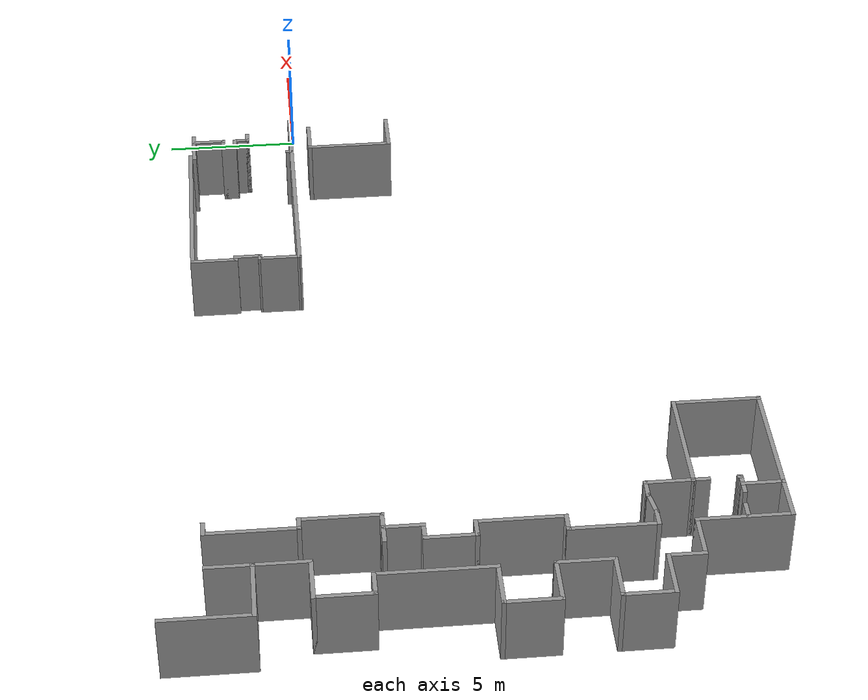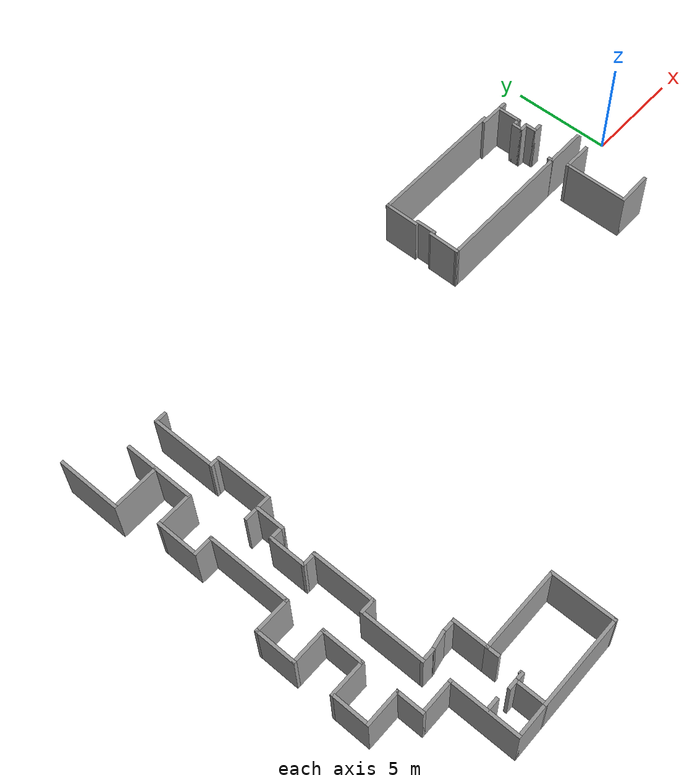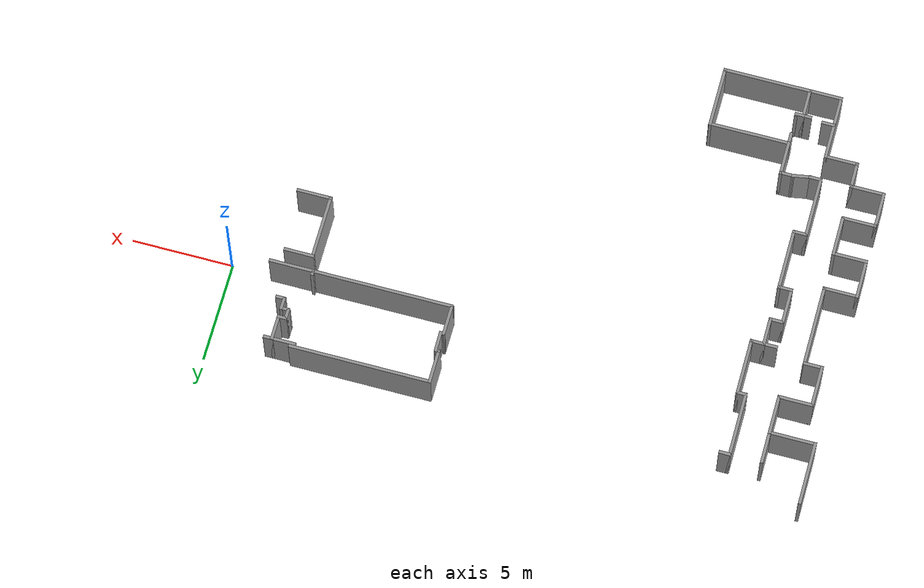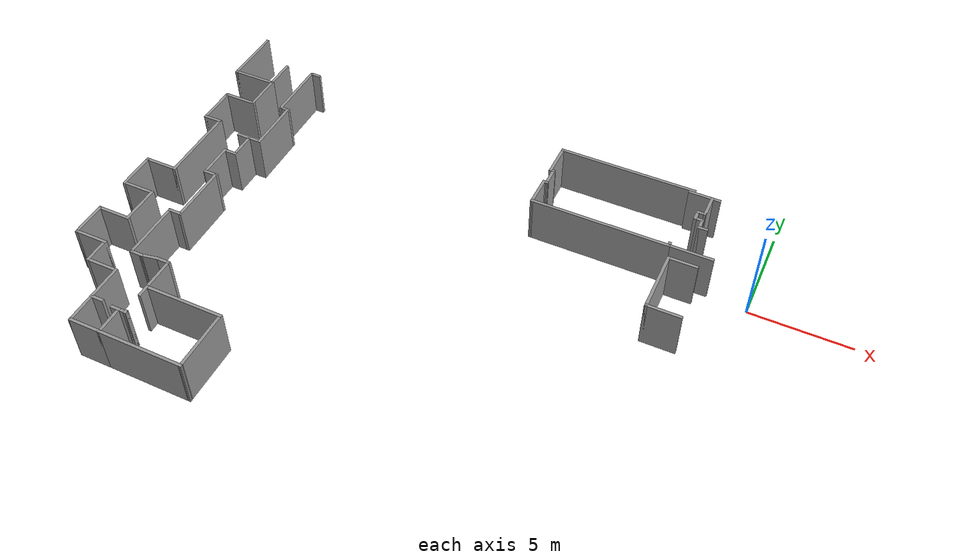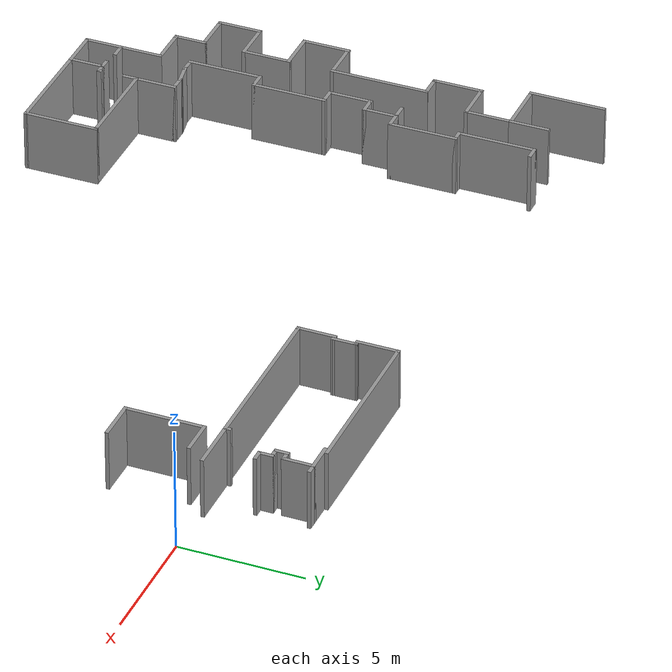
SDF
<sdf version="1.7">
 <model name="NursingHome">
  <pose>-0.88842 0.073115 0 0 -0 0</pose>
  <link name="Wall_156">
   <collision name="Wall_156_Collision">
    <geometry><box><size>3.15 0.15 2.5</size></box></geometry>
    <pose>0 0 1.25 0 -0 0</pose>
   </collision>
   <visual name="Wall_156_Visual">
    <pose>0 0 1.25 0 -0 0</pose>
    <geometry><box><size>3.15 0.15 2.5</size></box></geometry>
    <material>
     <script><uri>file://media/materials/scripts/gazebo.material</uri><name>Gazebo/Grey</name></script>
     <ambient>1 1 1 1</ambient>
    </material>
    <meta><layer>0</layer></meta>
   </visual>
   <pose>-28.3947 3.82 0 0 -0 -1.5708</pose>
  </link>
  <link name="Wall_158">
   <collision name="Wall_158_Collision">
    <geometry><box><size>2.35 0.15 2.5</size></box></geometry>
    <pose>0 0 1.25 0 -0 0</pose>
   </collision>
   <visual name="Wall_158_Visual">
    <pose>0 0 1.25 0 -0 0</pose>
    <geometry><box><size>2.35 0.15 2.5</size></box></geometry>
    <material>
     <script><uri>file://media/materials/scripts/gazebo.material</uri><name>Gazebo/Grey</name></script>
     <ambient>1 1 1 1</ambient>
    </material>
    <meta><layer>0</layer></meta>
   </visual>
   <pose>-27.2947 2.32 0 0 -0 0</pose>
  </link>
  <link name="Wall_163">
   <collision name="Wall_163_Collision">
    <geometry><box><size>1.65 0.15 2.5</size></box></geometry>
    <pose>0 0 1.25 0 -0 0</pose>
   </collision>
   <visual name="Wall_163_Visual">
    <pose>0 0 1.25 0 -0 0</pose>
    <geometry><box><size>1.65 0.15 2.5</size></box></geometry>
    <material>
     <script><uri>file://media/materials/scripts/gazebo.material</uri><name>Gazebo/Grey</name></script>
     <ambient>1 1 1 1</ambient>
    </material>
    <meta><layer>0</layer></meta>
   </visual>
   <pose>-26.1947 3.07 0 0 -0 1.5708</pose>
  </link>
  <link name="Wall_169">
   <collision name="Wall_169_Collision">
    <geometry><box><size>2 0.15 2.5</size></box></geometry>
    <pose>0 0 1.25 0 -0 0</pose>
   </collision>
   <visual name="Wall_169_Visual">
    <pose>0 0 1.25 0 -0 0</pose>
    <geometry><box><size>2 0.15 2.5</size></box></geometry>
    <material>
     <script><uri>file://media/materials/scripts/gazebo.material</uri><name>Gazebo/Grey</name></script>
     <ambient>1 1 1 1</ambient>
    </material>
    <meta><layer>0</layer></meta>
   </visual>
   <pose>-26.1947 1.395 0 0 -0 -1.5708</pose>
  </link>
  <link name="Wall_170">
   <collision name="Wall_170_Collision">
    <geometry><box><size>1.75 0.15 2.5</size></box></geometry>
    <pose>0 0 1.25 0 -0 0</pose>
   </collision>
   <visual name="Wall_170_Visual">
    <pose>0 0 1.25 0 -0 0</pose>
    <geometry><box><size>1.75 0.15 2.5</size></box></geometry>
    <material>
     <script><uri>file://media/materials/scripts/gazebo.material</uri><name>Gazebo/Grey</name></script>
     <ambient>1 1 1 1</ambient>
    </material>
    <meta><layer>0</layer></meta>
   </visual>
   <pose>-26.9947 0.47 0 0 -0 3.14159</pose>
  </link>
  <link name="Wall_171">
   <collision name="Wall_171_Collision">
    <geometry><box><size>2.1 0.15 2.5</size></box></geometry>
    <pose>0 0 1.25 0 -0 0</pose>
   </collision>
   <visual name="Wall_171_Visual">
    <pose>0 0 1.25 0 -0 0</pose>
    <geometry><box><size>2.1 0.15 2.5</size></box></geometry>
    <material>
     <script><uri>file://media/materials/scripts/gazebo.material</uri><name>Gazebo/Grey</name></script>
     <ambient>1 1 1 1</ambient>
    </material>
    <meta><layer>0</layer></meta>
   </visual>
   <pose>-27.7947 -0.505 0 0 -0 -1.5708</pose>
  </link>
  <link name="Wall_173">
   <collision name="Wall_173_Collision">
    <geometry><box><size>1 0.15 2.5</size></box></geometry>
    <pose>0 0 1.25 0 -0 0</pose>
   </collision>
   <visual name="Wall_173_Visual">
    <pose>0 0 1.25 0 -0 0</pose>
    <geometry><box><size>1 0.15 2.5</size></box></geometry>
    <material>
     <script><uri>file://media/materials/scripts/gazebo.material</uri><name>Gazebo/Grey</name></script>
     <ambient>1 1 1 1</ambient>
    </material>
    <meta><layer>0</layer></meta>
   </visual>
   <pose>-27.3697 -1.48 0 0 -0 0</pose>
  </link>
  <link name="Wall_175">
   <collision name="Wall_175_Collision">
    <geometry><box><size>4.1 0.15 2.5</size></box></geometry>
    <pose>0 0 1.25 0 -0 0</pose>
   </collision>
   <visual name="Wall_175_Visual">
    <pose>0 0 1.25 0 -0 0</pose>
    <geometry><box><size>4.1 0.15 2.5</size></box></geometry>
    <material>
     <script><uri>file://media/materials/scripts/gazebo.material</uri><name>Gazebo/Grey</name></script>
     <ambient>1 1 1 1</ambient>
    </material>
    <meta><layer>0</layer></meta>
   </visual>
   <pose>-26.9447 -3.455 0 0 -0 -1.5708</pose>
  </link>
  <link name="Wall_177">
   <collision name="Wall_177_Collision">
    <geometry><box><size>1.75 0.15 2.5</size></box></geometry>
    <pose>0 0 1.25 0 -0 0</pose>
   </collision>
   <visual name="Wall_177_Visual">
    <pose>0 0 1.25 0 -0 0</pose>
    <geometry><box><size>1.75 0.15 2.5</size></box></geometry>
    <material>
     <script><uri>file://media/materials/scripts/gazebo.material</uri><name>Gazebo/Grey</name></script>
     <ambient>1 1 1 1</ambient>
    </material>
    <meta><layer>0</layer></meta>
   </visual>
   <pose>-27.7447 -5.43 0 0 -0 3.14159</pose>
  </link>
  <link name="Wall_179">
   <collision name="Wall_179_Collision">
    <geometry><box><size>2 0.15 2.5</size></box></geometry>
    <pose>0 0 1.25 0 -0 0</pose>
   </collision>
   <visual name="Wall_179_Visual">
    <pose>0 0 1.25 0 -0 0</pose>
    <geometry><box><size>2 0.15 2.5</size></box></geometry>
    <material>
     <script><uri>file://media/materials/scripts/gazebo.material</uri><name>Gazebo/Grey</name></script>
     <ambient>1 1 1 1</ambient>
    </material>
    <meta><layer>0</layer></meta>
   </visual>
   <pose>-28.5447 -6.355 0 0 -0 -1.5708</pose>
  </link>
  <link name="Wall_180">
   <collision name="Wall_180_Collision">
    <geometry><box><size>1.75 0.15 2.5</size></box></geometry>
    <pose>0 0 1.25 0 -0 0</pose>
   </collision>
   <visual name="Wall_180_Visual">
    <pose>0 0 1.25 0 -0 0</pose>
    <geometry><box><size>1.75 0.15 2.5</size></box></geometry>
    <material>
     <script><uri>file://media/materials/scripts/gazebo.material</uri><name>Gazebo/Grey</name></script>
     <ambient>1 1 1 1</ambient>
    </material>
    <meta><layer>0</layer></meta>
   </visual>
   <pose>-27.7447 -7.28 0 0 -0 0</pose>
  </link>
  <link name="Wall_183">
   <collision name="Wall_183_Collision">
    <geometry><box><size>2.05 0.15 2.5</size></box></geometry>
    <pose>0 0 1.25 0 -0 0</pose>
   </collision>
   <visual name="Wall_183_Visual">
    <pose>0 0 1.25 0 -0 0</pose>
    <geometry><box><size>2.05 0.15 2.5</size></box></geometry>
    <material>
     <script><uri>file://media/materials/scripts/gazebo.material</uri><name>Gazebo/Grey</name></script>
     <ambient>1 1 1 1</ambient>
    </material>
    <meta><layer>0</layer></meta>
   </visual>
   <pose>-26.9447 -8.23 0 0 -0 -1.5708</pose>
  </link>
  <link name="Wall_185">
   <collision name="Wall_185_Collision">
    <geometry><box><size>1.75 0.15 2.5</size></box></geometry>
    <pose>0 0 1.25 0 -0 0</pose>
   </collision>
   <visual name="Wall_185_Visual">
    <pose>0 0 1.25 0 -0 0</pose>
    <geometry><box><size>1.75 0.15 2.5</size></box></geometry>
    <material>
     <script><uri>file://media/materials/scripts/gazebo.material</uri><name>Gazebo/Grey</name></script>
     <ambient>1 1 1 1</ambient>
    </material>
    <meta><layer>0</layer></meta>
   </visual>
   <pose>-27.7447 -9.18 0 0 -0 3.14159</pose>
  </link>
  <link name="Wall_186">
   <collision name="Wall_186_Collision">
    <geometry><box><size>1.85 0.15 2.5</size></box></geometry>
    <pose>0 0 1.25 0 -0 0</pose>
   </collision>
   <visual name="Wall_186_Visual">
    <pose>0 0 1.25 0 -0 0</pose>
    <geometry><box><size>1.85 0.15 2.5</size></box></geometry>
    <material>
     <script><uri>file://media/materials/scripts/gazebo.material</uri><name>Gazebo/Grey</name></script>
     <ambient>1 1 1 1</ambient>
    </material>
    <meta><layer>0</layer></meta>
   </visual>
   <pose>-28.5447 -10.03 0 0 -0 -1.5708</pose>
  </link>
  <link name="Wall_188">
   <collision name="Wall_188_Collision">
    <geometry><box><size>1.75 0.15 2.5</size></box></geometry>
    <pose>0 0 1.25 0 -0 0</pose>
   </collision>
   <visual name="Wall_188_Visual">
    <pose>0 0 1.25 0 -0 0</pose>
    <geometry><box><size>1.75 0.15 2.5</size></box></geometry>
    <material>
     <script><uri>file://media/materials/scripts/gazebo.material</uri><name>Gazebo/Grey</name></script>
     <ambient>1 1 1 1</ambient>
    </material>
    <meta><layer>0</layer></meta>
   </visual>
   <pose>-27.7447 -10.88 0 0 -0 0</pose>
  </link>
  <link name="Wall_190">
   <collision name="Wall_190_Collision">
    <geometry><box><size>1.35 0.15 2.5</size></box></geometry>
    <pose>0 0 1.25 0 -0 0</pose>
   </collision>
   <visual name="Wall_190_Visual">
    <pose>0 0 1.25 0 -0 0</pose>
    <geometry><box><size>1.35 0.15 2.5</size></box></geometry>
    <material>
     <script><uri>file://media/materials/scripts/gazebo.material</uri><name>Gazebo/Grey</name></script>
     <ambient>1 1 1 1</ambient>
    </material>
    <meta><layer>0</layer></meta>
   </visual>
   <pose>-26.9447 -11.48 0 0 -0 -1.5708</pose>
  </link>
  <link name="Wall_192">
   <collision name="Wall_192_Collision">
    <geometry><box><size>1.7 0.15 2.5</size></box></geometry>
    <pose>0 0 1.25 0 -0 0</pose>
   </collision>
   <visual name="Wall_192_Visual">
    <pose>0 0 1.25 0 -0 0</pose>
    <geometry><box><size>1.7 0.15 2.5</size></box></geometry>
    <material>
     <script><uri>file://media/materials/scripts/gazebo.material</uri><name>Gazebo/Grey</name></script>
     <ambient>1 1 1 1</ambient>
    </material>
    <meta><layer>0</layer></meta>
   </visual>
   <pose>-26.1697 -12.08 0 0 -0 0</pose>
  </link>
  <link name="Wall_195">
   <collision name="Wall_195_Collision">
    <geometry><box><size>3.3 0.15 2.5</size></box></geometry>
    <pose>0 0 1.25 0 -0 0</pose>
   </collision>
   <visual name="Wall_195_Visual">
    <pose>0 0 1.25 0 -0 0</pose>
    <geometry><box><size>3.3 0.15 2.5</size></box></geometry>
    <material>
     <script><uri>file://media/materials/scripts/gazebo.material</uri><name>Gazebo/Grey</name></script>
     <ambient>1 1 1 1</ambient>
    </material>
    <meta><layer>0</layer></meta>
   </visual>
   <pose>-25.3947 -13.655 0 0 -0 -1.5708</pose>
  </link>
  <link name="Wall_197">
   <collision name="Wall_197_Collision">
    <geometry><box><size>0.65 0.15 2.5</size></box></geometry>
    <pose>0 0 1.25 0 -0 0</pose>
   </collision>
   <visual name="Wall_197_Visual">
    <pose>0 0 1.25 0 -0 0</pose>
    <geometry><box><size>0.65 0.15 2.5</size></box></geometry>
    <material>
     <script><uri>file://media/materials/scripts/gazebo.material</uri><name>Gazebo/Grey</name></script>
     <ambient>1 1 1 1</ambient>
    </material>
    <meta><layer>0</layer></meta>
   </visual>
   <pose>-25.1037 -13.7746 0 0 -0 0</pose>
  </link>
  <link name="Wall_199">
   <collision name="Wall_199_Collision">
    <geometry><box><size>1.7 0.15 2.5</size></box></geometry>
    <pose>0 0 1.25 0 -0 0</pose>
   </collision>
   <visual name="Wall_199_Visual">
    <pose>0 0 1.25 0 -0 0</pose>
    <geometry><box><size>1.7 0.15 2.5</size></box></geometry>
    <material>
     <script><uri>file://media/materials/scripts/gazebo.material</uri><name>Gazebo/Grey</name></script>
     <ambient>1 1 1 1</ambient>
    </material>
    <meta><layer>0</layer></meta>
   </visual>
   <pose>-24.6197 -15.23 0 0 -0 0</pose>
  </link>
  <link name="Wall_201">
   <collision name="Wall_201_Collision">
    <geometry><box><size>1.5 0.15 2.5</size></box></geometry>
    <pose>0 0 1.25 0 -0 0</pose>
   </collision>
   <visual name="Wall_201_Visual">
    <pose>0 0 1.25 0 -0 0</pose>
    <geometry><box><size>1.5 0.15 2.5</size></box></geometry>
    <material>
     <script><uri>file://media/materials/scripts/gazebo.material</uri><name>Gazebo/Grey</name></script>
     <ambient>1 1 1 1</ambient>
    </material>
    <meta><layer>0</layer></meta>
   </visual>
   <pose>-23.8447 -14.555 0 0 -0 1.5708</pose>
  </link>
  <link name="Wall_202">
   <collision name="Wall_202_Collision">
    <geometry><box><size>0.5 0.15 2.5</size></box></geometry>
    <pose>0 0 1.25 0 -0 0</pose>
   </collision>
   <visual name="Wall_202_Visual">
    <pose>0 0 1.25 0 -0 0</pose>
    <geometry><box><size>0.5 0.15 2.5</size></box></geometry>
    <material>
     <script><uri>file://media/materials/scripts/gazebo.material</uri><name>Gazebo/Grey</name></script>
     <ambient>1 1 1 1</ambient>
    </material>
    <meta><layer>0</layer></meta>
   </visual>
   <pose>-24.0197 -13.88 0 0 -0 3.14159</pose>
  </link>
  <link name="Wall_204">
   <collision name="Wall_204_Collision">
    <geometry><box><size>0.5 0.15 2.5</size></box></geometry>
    <pose>0 0 1.25 0 -0 0</pose>
   </collision>
   <visual name="Wall_204_Visual">
    <pose>0 0 1.25 0 -0 0</pose>
    <geometry><box><size>0.5 0.15 2.5</size></box></geometry>
    <material>
     <script><uri>file://media/materials/scripts/gazebo.material</uri><name>Gazebo/Grey</name></script>
     <ambient>1 1 1 1</ambient>
    </material>
    <meta><layer>0</layer></meta>
   </visual>
   <pose>-23.6697 -13.88 0 0 -0 0</pose>
  </link>
  <link name="Wall_205">
   <collision name="Wall_205_Collision">
    <geometry><box><size>0.2 0.15 2.5</size></box></geometry>
    <pose>0 0 1.25 0 -0 0</pose>
   </collision>
   <visual name="Wall_205_Visual">
    <pose>0 0 1.25 0 -0 0</pose>
    <geometry><box><size>0.2 0.15 2.5</size></box></geometry>
    <material>
     <script><uri>file://media/materials/scripts/gazebo.material</uri><name>Gazebo/Grey</name></script>
     <ambient>1 1 1 1</ambient>
    </material>
    <meta><layer>0</layer></meta>
   </visual>
   <pose>-23.4947 -13.855 0 0 -0 1.5708</pose>
  </link>
  <link name="Wall_208">
   <collision name="Wall_208_Collision">
    <geometry><box><size>0.65 0.15 2.5</size></box></geometry>
    <pose>0 0 1.25 0 -0 0</pose>
   </collision>
   <visual name="Wall_208_Visual">
    <pose>0 0 1.25 0 -0 0</pose>
    <geometry><box><size>0.65 0.15 2.5</size></box></geometry>
    <material>
     <script><uri>file://media/materials/scripts/gazebo.material</uri><name>Gazebo/Grey</name></script>
     <ambient>1 1 1 1</ambient>
    </material>
    <meta><layer>0</layer></meta>
   </visual>
   <pose>-23.5128 -12.5376 0 0 -0 1.5708</pose>
  </link>
  <link name="Wall_210">
   <collision name="Wall_210_Collision">
    <geometry><box><size>4.05 0.15 2.5</size></box></geometry>
    <pose>0 0 1.25 0 -0 0</pose>
   </collision>
   <visual name="Wall_210_Visual">
    <pose>0 0 1.25 0 -0 0</pose>
    <geometry><box><size>4.05 0.15 2.5</size></box></geometry>
    <material>
     <script><uri>file://media/materials/scripts/gazebo.material</uri><name>Gazebo/Grey</name></script>
     <ambient>1 1 1 1</ambient>
    </material>
    <meta><layer>0</layer></meta>
   </visual>
   <pose>-21.5628 -12.2876 0 0 -0 0</pose>
  </link>
  <link name="Wall_213">
   <collision name="Wall_213_Collision">
    <geometry><box><size>3.1 0.15 2.5</size></box></geometry>
    <pose>0 0 1.25 0 -0 0</pose>
   </collision>
   <visual name="Wall_213_Visual">
    <pose>0 0 1.25 0 -0 0</pose>
    <geometry><box><size>3.1 0.15 2.5</size></box></geometry>
    <material>
     <script><uri>file://media/materials/scripts/gazebo.material</uri><name>Gazebo/Grey</name></script>
     <ambient>1 1 1 1</ambient>
    </material>
    <meta><layer>0</layer></meta>
   </visual>
   <pose>-19.6128 -13.7626 0 0 -0 -1.5708</pose>
  </link>
  <link name="Wall_215">
   <collision name="Wall_215_Collision">
    <geometry><box><size>4.38192 0.15 2.5</size></box></geometry>
    <pose>0 0 1.25 0 -0 0</pose>
   </collision>
   <visual name="Wall_215_Visual">
    <pose>0 0 1.25 0 -0 0</pose>
    <geometry><box><size>4.38192 0.15 2.5</size></box></geometry>
    <material>
     <script><uri>file://media/materials/scripts/gazebo.material</uri><name>Gazebo/Grey</name></script>
     <ambient>1 1 1 1</ambient>
    </material>
    <meta><layer>0</layer></meta>
   </visual>
   <pose>-21.7288 -15.2338 0 0 -0 3.13979</pose>
  </link>
  <link name="Wall_218">
   <collision name="Wall_218_Collision">
    <geometry><box><size>1.75 0.15 2.5</size></box></geometry>
    <pose>0 0 1.25 0 -0 0</pose>
   </collision>
   <visual name="Wall_218_Visual">
    <pose>0 0 1.25 0 -0 0</pose>
    <geometry><box><size>1.75 0.15 2.5</size></box></geometry>
    <material>
     <script><uri>file://media/materials/scripts/gazebo.material</uri><name>Gazebo/Grey</name></script>
     <ambient>1 1 1 1</ambient>
    </material>
    <meta><layer>0</layer></meta>
   </visual>
   <pose>-23.5128 -11.4876 0 0 -0 1.5708</pose>
  </link>
  <link name="Wall_220">
   <collision name="Wall_220_Collision">
    <geometry><box><size>0.75 0.15 2.5</size></box></geometry>
    <pose>0 0 1.25 0 -0 0</pose>
   </collision>
   <visual name="Wall_220_Visual">
    <pose>0 0 1.25 0 -0 0</pose>
    <geometry><box><size>0.75 0.15 2.5</size></box></geometry>
    <material>
     <script><uri>file://media/materials/scripts/gazebo.material</uri><name>Gazebo/Grey</name></script>
     <ambient>1 1 1 1</ambient>
    </material>
    <meta><layer>0</layer></meta>
   </visual>
   <pose>-23.8128 -10.6876 0 0 -0 3.14159</pose>
  </link>
  <link name="Wall_222">
   <collision name="Wall_222_Collision">
    <geometry><box><size>0.7 0.15 2.5</size></box></geometry>
    <pose>0 0 1.25 0 -0 0</pose>
   </collision>
   <visual name="Wall_222_Visual">
    <pose>0 0 1.25 0 -0 0</pose>
    <geometry><box><size>0.7 0.15 2.5</size></box></geometry>
    <material>
     <script><uri>file://media/materials/scripts/gazebo.material</uri><name>Gazebo/Grey</name></script>
     <ambient>1 1 1 1</ambient>
    </material>
    <meta><layer>0</layer></meta>
   </visual>
   <pose>-25.1789 -10.8318 0 0 -0 3.14159</pose>
  </link>
  <link name="Wall_224">
   <collision name="Wall_224_Collision">
    <geometry><box><size>0.954078 0.15 2.5</size></box></geometry>
    <pose>0 0 1.25 0 -0 0</pose>
   </collision>
   <visual name="Wall_224_Visual">
    <pose>0 0 1.25 0 -0 0</pose>
    <geometry><box><size>0.954078 0.15 2.5</size></box></geometry>
    <material>
     <script><uri>file://media/materials/scripts/gazebo.material</uri><name>Gazebo/Grey</name></script>
     <ambient>1 1 1 1</ambient>
    </material>
    <meta><layer>0</layer></meta>
   </visual>
   <pose>-24.5084 -10.7597 0 0 -0 0.180228</pose>
  </link>
  <link name="Wall_226">
   <collision name="Wall_226_Collision">
    <geometry><box><size>3.1 0.15 2.5</size></box></geometry>
    <pose>0 0 1.25 0 -0 0</pose>
   </collision>
   <visual name="Wall_226_Visual">
    <pose>0 0 1.25 0 -0 0</pose>
    <geometry><box><size>3.1 0.15 2.5</size></box></geometry>
    <material>
     <script><uri>file://media/materials/scripts/gazebo.material</uri><name>Gazebo/Grey</name></script>
     <ambient>1 1 1 1</ambient>
    </material>
    <meta><layer>0</layer></meta>
   </visual>
   <pose>-25.4539 -9.35676 0 0 -0 1.5708</pose>
  </link>
  <link name="Wall_228">
   <collision name="Wall_228_Collision">
    <geometry><box><size>0.75 0.15 2.5</size></box></geometry>
    <pose>0 0 1.25 0 -0 0</pose>
   </collision>
   <visual name="Wall_228_Visual">
    <pose>0 0 1.25 0 -0 0</pose>
    <geometry><box><size>0.75 0.15 2.5</size></box></geometry>
    <material>
     <script><uri>file://media/materials/scripts/gazebo.material</uri><name>Gazebo/Grey</name></script>
     <ambient>1 1 1 1</ambient>
    </material>
    <meta><layer>0</layer></meta>
   </visual>
   <pose>-25.1539 -7.88176 0 0 -0 0</pose>
  </link>
  <link name="Wall_229">
   <collision name="Wall_229_Collision">
    <geometry><box><size>3.1 0.15 2.5</size></box></geometry>
    <pose>0 0 1.25 0 -0 0</pose>
   </collision>
   <visual name="Wall_229_Visual">
    <pose>0 0 1.25 0 -0 0</pose>
    <geometry><box><size>3.1 0.15 2.5</size></box></geometry>
    <material>
     <script><uri>file://media/materials/scripts/gazebo.material</uri><name>Gazebo/Grey</name></script>
     <ambient>1 1 1 1</ambient>
    </material>
    <meta><layer>0</layer></meta>
   </visual>
   <pose>-24.8539 -6.40676 0 0 -0 1.5708</pose>
  </link>
  <link name="Wall_231">
   <collision name="Wall_231_Collision">
    <geometry><box><size>0.75 0.15 2.5</size></box></geometry>
    <pose>0 0 1.25 0 -0 0</pose>
   </collision>
   <visual name="Wall_231_Visual">
    <pose>0 0 1.25 0 -0 0</pose>
    <geometry><box><size>0.75 0.15 2.5</size></box></geometry>
    <material>
     <script><uri>file://media/materials/scripts/gazebo.material</uri><name>Gazebo/Grey</name></script>
     <ambient>1 1 1 1</ambient>
    </material>
    <meta><layer>0</layer></meta>
   </visual>
   <pose>-25.1539 -4.93176 0 0 -0 3.14159</pose>
  </link>
  <link name="Wall_233">
   <collision name="Wall_233_Collision">
    <geometry><box><size>1.85 0.15 2.5</size></box></geometry>
    <pose>0 0 1.25 0 -0 0</pose>
   </collision>
   <visual name="Wall_233_Visual">
    <pose>0 0 1.25 0 -0 0</pose>
    <geometry><box><size>1.85 0.15 2.5</size></box></geometry>
    <material>
     <script><uri>file://media/materials/scripts/gazebo.material</uri><name>Gazebo/Grey</name></script>
     <ambient>1 1 1 1</ambient>
    </material>
    <meta><layer>0</layer></meta>
   </visual>
   <pose>-25.4539 -4.08176 0 0 -0 1.5708</pose>
  </link>
  <link name="Wall_235">
   <collision name="Wall_235_Collision">
    <geometry><box><size>0.75 0.15 2.5</size></box></geometry>
    <pose>0 0 1.25 0 -0 0</pose>
   </collision>
   <visual name="Wall_235_Visual">
    <pose>0 0 1.25 0 -0 0</pose>
    <geometry><box><size>0.75 0.15 2.5</size></box></geometry>
    <material>
     <script><uri>file://media/materials/scripts/gazebo.material</uri><name>Gazebo/Grey</name></script>
     <ambient>1 1 1 1</ambient>
    </material>
    <meta><layer>0</layer></meta>
   </visual>
   <pose>-25.1539 -3.23176 0 0 -0 0</pose>
  </link>
  <link name="Wall_237">
   <collision name="Wall_237_Collision">
    <geometry><box><size>1.45 0.15 2.5</size></box></geometry>
    <pose>0 0 1.25 0 -0 0</pose>
   </collision>
   <visual name="Wall_237_Visual">
    <pose>0 0 1.25 0 -0 0</pose>
    <geometry><box><size>1.45 0.15 2.5</size></box></geometry>
    <material>
     <script><uri>file://media/materials/scripts/gazebo.material</uri><name>Gazebo/Grey</name></script>
     <ambient>1 1 1 1</ambient>
    </material>
    <meta><layer>0</layer></meta>
   </visual>
   <pose>-24.8539 -2.58176 0 0 -0 1.5708</pose>
  </link>
  <link name="Wall_239">
   <collision name="Wall_239_Collision">
    <geometry><box><size>0.75 0.15 2.5</size></box></geometry>
    <pose>0 0 1.25 0 -0 0</pose>
   </collision>
   <visual name="Wall_239_Visual">
    <pose>0 0 1.25 0 -0 0</pose>
    <geometry><box><size>0.75 0.15 2.5</size></box></geometry>
    <material>
     <script><uri>file://media/materials/scripts/gazebo.material</uri><name>Gazebo/Grey</name></script>
     <ambient>1 1 1 1</ambient>
    </material>
    <meta><layer>0</layer></meta>
   </visual>
   <pose>-25.1539 -1.93176 0 0 -0 3.14159</pose>
  </link>
  <link name="Wall_241">
   <collision name="Wall_241_Collision">
    <geometry><box><size>0.75 0.15 2.5</size></box></geometry>
    <pose>0 0 1.25 0 -0 0</pose>
   </collision>
   <visual name="Wall_241_Visual">
    <pose>0 0 1.25 0 -0 0</pose>
    <geometry><box><size>0.75 0.15 2.5</size></box></geometry>
    <material>
     <script><uri>file://media/materials/scripts/gazebo.material</uri><name>Gazebo/Grey</name></script>
     <ambient>1 1 1 1</ambient>
    </material>
    <meta><layer>0</layer></meta>
   </visual>
   <pose>-24.5539 -1.93176 0 0 -0 0</pose>
  </link>
  <link name="Wall_242">
   <collision name="Wall_242_Collision">
    <geometry><box><size>2.85 0.15 2.5</size></box></geometry>
    <pose>0 0 1.25 0 -0 0</pose>
   </collision>
   <visual name="Wall_242_Visual">
    <pose>0 0 1.25 0 -0 0</pose>
    <geometry><box><size>2.85 0.15 2.5</size></box></geometry>
    <material>
     <script><uri>file://media/materials/scripts/gazebo.material</uri><name>Gazebo/Grey</name></script>
     <ambient>1 1 1 1</ambient>
    </material>
    <meta><layer>0</layer></meta>
   </visual>
   <pose>-24.2539 -0.581756 0 0 -0 1.5708</pose>
  </link>
  <link name="Wall_244">
   <collision name="Wall_244_Collision">
    <geometry><box><size>0.55 0.15 2.5</size></box></geometry>
    <pose>0 0 1.25 0 -0 0</pose>
   </collision>
   <visual name="Wall_244_Visual">
    <pose>0 0 1.25 0 -0 0</pose>
    <geometry><box><size>0.55 0.15 2.5</size></box></geometry>
    <material>
     <script><uri>file://media/materials/scripts/gazebo.material</uri><name>Gazebo/Grey</name></script>
     <ambient>1 1 1 1</ambient>
    </material>
    <meta><layer>0</layer></meta>
   </visual>
   <pose>-24.4539 0.768244 0 0 -0 3.14159</pose>
  </link>
  <link name="Wall_246">
   <collision name="Wall_246_Collision">
    <geometry><box><size>3.25 0.15 2.5</size></box></geometry>
    <pose>0 0 1.25 0 -0 0</pose>
   </collision>
   <visual name="Wall_246_Visual">
    <pose>0 0 1.25 0 -0 0</pose>
    <geometry><box><size>3.25 0.15 2.5</size></box></geometry>
    <material>
     <script><uri>file://media/materials/scripts/gazebo.material</uri><name>Gazebo/Grey</name></script>
     <ambient>1 1 1 1</ambient>
    </material>
    <meta><layer>0</layer></meta>
   </visual>
   <pose>-24.6539 2.31824 0 0 -0 1.5708</pose>
  </link>
  <link name="Wall_248">
   <collision name="Wall_248_Collision">
    <geometry><box><size>0.6 0.15 2.5</size></box></geometry>
    <pose>0 0 1.25 0 -0 0</pose>
   </collision>
   <visual name="Wall_248_Visual">
    <pose>0 0 1.25 0 -0 0</pose>
    <geometry><box><size>0.6 0.15 2.5</size></box></geometry>
    <material>
     <script><uri>file://media/materials/scripts/gazebo.material</uri><name>Gazebo/Grey</name></script>
     <ambient>1 1 1 1</ambient>
    </material>
    <meta><layer>0</layer></meta>
   </visual>
   <pose>-24.4289 3.86824 0 0 -0 0</pose>
  </link>
  <link name="Wall_336">
   <collision name="Wall_336_Collision">
    <geometry><box><size>0.5 0.15 2.5</size></box></geometry>
    <pose>0 0 1.25 0 -0 0</pose>
   </collision>
   <visual name="Wall_336_Visual">
    <pose>0 0 1.25 0 -0 0</pose>
    <geometry><box><size>0.5 0.15 2.5</size></box></geometry>
    <material>
     <script><uri>file://media/materials/scripts/gazebo.material</uri><name>Gazebo/Grey</name></script>
     <ambient>1 1 1 1</ambient>
    </material>
    <meta><layer>0</layer></meta>
   </visual>
   <pose>-2.16755 3.89834 0 0 -0 0</pose>
  </link>
  <link name="Wall_359">
   <collision name="Wall_359_Collision">
    <geometry><box><size>0.5 0.15 2.5</size></box></geometry>
    <pose>0 0 1.25 0 -0 0</pose>
   </collision>
   <visual name="Wall_359_Visual">
    <pose>0 0 1.25 0 -0 0</pose>
    <geometry><box><size>0.5 0.15 2.5</size></box></geometry>
    <material>
     <script><uri>file://media/materials/scripts/gazebo.material</uri><name>Gazebo/Grey</name></script>
     <ambient>1 1 1 1</ambient>
    </material>
    <meta><layer>0</layer></meta>
   </visual>
   <pose>-2.16755 1.79834 0 0 -0 3.14159</pose>
  </link>
  <link name="Wall_360">
   <collision name="Wall_360_Collision">
    <geometry><box><size>0.65 0.15 2.5</size></box></geometry>
    <pose>0 0 1.25 0 -0 0</pose>
   </collision>
   <visual name="Wall_360_Visual">
    <pose>0 0 1.25 0 -0 0</pose>
    <geometry><box><size>0.65 0.15 2.5</size></box></geometry>
    <material>
     <script><uri>file://media/materials/scripts/gazebo.material</uri><name>Gazebo/Grey</name></script>
     <ambient>1 1 1 1</ambient>
    </material>
    <meta><layer>0</layer></meta>
   </visual>
   <pose>-2.34255 2.04834 0 0 -0 1.5708</pose>
  </link>
  <link name="Wall_362">
   <collision name="Wall_362_Collision">
    <geometry><box><size>0.5 0.15 2.5</size></box></geometry>
    <pose>0 0 1.25 0 -0 0</pose>
   </collision>
   <visual name="Wall_362_Visual">
    <pose>0 0 1.25 0 -0 0</pose>
    <geometry><box><size>0.5 0.15 2.5</size></box></geometry>
    <material>
     <script><uri>file://media/materials/scripts/gazebo.material</uri><name>Gazebo/Grey</name></script>
     <ambient>1 1 1 1</ambient>
    </material>
    <meta><layer>0</layer></meta>
   </visual>
   <pose>-2.51755 2.29834 0 0 -0 3.14159</pose>
  </link>
  <link name="Wall_363">
   <collision name="Wall_363_Collision">
    <geometry><box><size>0.6 0.15 2.5</size></box></geometry>
    <pose>0 0 1.25 0 -0 0</pose>
   </collision>
   <visual name="Wall_363_Visual">
    <pose>0 0 1.25 0 -0 0</pose>
    <geometry><box><size>0.6 0.15 2.5</size></box></geometry>
    <material>
     <script><uri>file://media/materials/scripts/gazebo.material</uri><name>Gazebo/Grey</name></script>
     <ambient>1 1 1 1</ambient>
    </material>
    <meta><layer>0</layer></meta>
   </visual>
   <pose>-2.69255 2.52334 0 0 -0 1.5708</pose>
  </link>
  <link name="Wall_365">
   <collision name="Wall_365_Collision">
    <geometry><box><size>0.5 0.15 2.5</size></box></geometry>
    <pose>0 0 1.25 0 -0 0</pose>
   </collision>
   <visual name="Wall_365_Visual">
    <pose>0 0 1.25 0 -0 0</pose>
    <geometry><box><size>0.5 0.15 2.5</size></box></geometry>
    <material>
     <script><uri>file://media/materials/scripts/gazebo.material</uri><name>Gazebo/Grey</name></script>
     <ambient>1 1 1 1</ambient>
    </material>
    <meta><layer>0</layer></meta>
   </visual>
   <pose>-2.51755 2.74834 0 0 -0 0</pose>
  </link>
  <link name="Wall_366">
   <collision name="Wall_366_Collision">
    <geometry><box><size>1.3 0.15 2.5</size></box></geometry>
    <pose>0 0 1.25 0 -0 0</pose>
   </collision>
   <visual name="Wall_366_Visual">
    <pose>0 0 1.25 0 -0 0</pose>
    <geometry><box><size>1.3 0.15 2.5</size></box></geometry>
    <material>
     <script><uri>file://media/materials/scripts/gazebo.material</uri><name>Gazebo/Grey</name></script>
     <ambient>1 1 1 1</ambient>
    </material>
    <meta><layer>0</layer></meta>
   </visual>
   <pose>-2.34255 3.32334 0 0 -0 1.5708</pose>
  </link>
  <link name="Wall_368">
   <collision name="Wall_368_Collision">
    <geometry><box><size>1.25 0.15 2.5</size></box></geometry>
    <pose>0 0 1.25 0 -0 0</pose>
   </collision>
   <visual name="Wall_368_Visual">
    <pose>0 0 1.25 0 -0 0</pose>
    <geometry><box><size>1.25 0.15 2.5</size></box></geometry>
    <material>
     <script><uri>file://media/materials/scripts/gazebo.material</uri><name>Gazebo/Grey</name></script>
     <ambient>1 1 1 1</ambient>
    </material>
    <meta><layer>0</layer></meta>
   </visual>
   <pose>-2.89255 3.89834 0 0 -0 3.14159</pose>
  </link>
  <link name="Wall_375">
   <collision name="Wall_375_Collision">
    <geometry><box><size>7 0.15 2.5</size></box></geometry>
    <pose>0 0 1.25 0 -0 0</pose>
   </collision>
   <visual name="Wall_375_Visual">
    <pose>0 0 1.25 0 -0 0</pose>
    <geometry><box><size>7 0.15 2.5</size></box></geometry>
    <material>
     <script><uri>file://media/materials/scripts/gazebo.material</uri><name>Gazebo/Grey</name></script>
     <ambient>1 1 1 1</ambient>
    </material>
    <meta><layer>0</layer></meta>
   </visual>
   <pose>-6.70209 4.04173 0 0 -0 0</pose>
  </link>
  <link name="Wall_377">
   <collision name="Wall_377_Collision">
    <geometry><box><size>1.75 0.15 2.5</size></box></geometry>
    <pose>0 0 1.25 0 -0 0</pose>
   </collision>
   <visual name="Wall_377_Visual">
    <pose>0 0 1.25 0 -0 0</pose>
    <geometry><box><size>1.75 0.15 2.5</size></box></geometry>
    <material>
     <script><uri>file://media/materials/scripts/gazebo.material</uri><name>Gazebo/Grey</name></script>
     <ambient>1 1 1 1</ambient>
    </material>
    <meta><layer>0</layer></meta>
   </visual>
   <pose>-10.1271 3.24173 0 0 -0 -1.5708</pose>
  </link>
  <link name="Wall_378">
   <collision name="Wall_378_Collision">
    <geometry><box><size>0.3 0.15 2.5</size></box></geometry>
    <pose>0 0 1.25 0 -0 0</pose>
   </collision>
   <visual name="Wall_378_Visual">
    <pose>0 0 1.25 0 -0 0</pose>
    <geometry><box><size>0.3 0.15 2.5</size></box></geometry>
    <material>
     <script><uri>file://media/materials/scripts/gazebo.material</uri><name>Gazebo/Grey</name></script>
     <ambient>1 1 1 1</ambient>
    </material>
    <meta><layer>0</layer></meta>
   </visual>
   <pose>-10.0521 2.44173 0 0 -0 0</pose>
  </link>
  <link name="Wall_383">
   <collision name="Wall_383_Collision">
    <geometry><box><size>7 0.15 2.5</size></box></geometry>
    <pose>0 0 1.25 0 -0 0</pose>
   </collision>
   <visual name="Wall_383_Visual">
    <pose>0 0 1.25 0 -0 0</pose>
    <geometry><box><size>7 0.15 2.5</size></box></geometry>
    <material>
     <script><uri>file://media/materials/scripts/gazebo.material</uri><name>Gazebo/Grey</name></script>
     <ambient>1 1 1 1</ambient>
    </material>
    <meta><layer>0</layer></meta>
   </visual>
   <pose>-6.70209 0.091733 0 0 -0 0</pose>
  </link>
  <link name="Wall_384">
   <collision name="Wall_384_Collision">
    <geometry><box><size>0.3 0.15 2.5</size></box></geometry>
    <pose>0 0 1.25 0 -0 0</pose>
   </collision>
   <visual name="Wall_384_Visual">
    <pose>0 0 1.25 0 -0 0</pose>
    <geometry><box><size>0.3 0.15 2.5</size></box></geometry>
    <material>
     <script><uri>file://media/materials/scripts/gazebo.material</uri><name>Gazebo/Grey</name></script>
     <ambient>1 1 1 1</ambient>
    </material>
    <meta><layer>0</layer></meta>
   </visual>
   <pose>-3.27709 0.166733 0 0 -0 1.5708</pose>
  </link>
  <link name="Wall_387">
   <collision name="Wall_387_Collision">
    <geometry><box><size>1.6 0.15 2.5</size></box></geometry>
    <pose>0 0 1.25 0 -0 0</pose>
   </collision>
   <visual name="Wall_387_Visual">
    <pose>0 0 1.25 0 -0 0</pose>
    <geometry><box><size>1.6 0.15 2.5</size></box></geometry>
    <material>
     <script><uri>file://media/materials/scripts/gazebo.material</uri><name>Gazebo/Grey</name></script>
     <ambient>1 1 1 1</ambient>
    </material>
    <meta><layer>0</layer></meta>
   </visual>
   <pose>-10.1238 0.816733 0 0 -0 1.56626</pose>
  </link>
  <link name="Wall_390">
   <collision name="Wall_390_Collision">
    <geometry><box><size>0.3 0.15 2.5</size></box></geometry>
    <pose>0 0 1.25 0 -0 0</pose>
   </collision>
   <visual name="Wall_390_Visual">
    <pose>0 0 1.25 0 -0 0</pose>
    <geometry><box><size>0.3 0.15 2.5</size></box></geometry>
    <material>
     <script><uri>file://media/materials/scripts/gazebo.material</uri><name>Gazebo/Grey</name></script>
     <ambient>1 1 1 1</ambient>
    </material>
    <meta><layer>0</layer></meta>
   </visual>
   <pose>-10.0455 1.54173 0 0 -0 0</pose>
  </link>
  <link name="Wall_394">
   <collision name="Wall_394_Collision">
    <geometry><box><size>1.05002 0.15 2.5</size></box></geometry>
    <pose>0 0 1.25 0 -0 0</pose>
   </collision>
   <visual name="Wall_394_Visual">
    <pose>0 0 1.25 0 -0 0</pose>
    <geometry><box><size>1.05002 0.15 2.5</size></box></geometry>
    <material>
     <script><uri>file://media/materials/scripts/gazebo.material</uri><name>Gazebo/Grey</name></script>
     <ambient>1 1 1 1</ambient>
    </material>
    <meta><layer>0</layer></meta>
   </visual>
   <pose>-9.9738 1.99173 0 0 -0 1.5781</pose>
  </link>
  <link name="Wall_396">
   <collision name="Wall_396_Collision">
    <geometry><box><size>2.25 0.15 2.5</size></box></geometry>
    <pose>0 0 1.25 0 -0 0</pose>
   </collision>
   <visual name="Wall_396_Visual">
    <pose>0 0 1.25 0 -0 0</pose>
    <geometry><box><size>2.25 0.15 2.5</size></box></geometry>
    <material>
     <script><uri>file://media/materials/scripts/gazebo.material</uri><name>Gazebo/Grey</name></script>
     <ambient>1 1 1 1</ambient>
    </material>
    <meta><layer>0</layer></meta>
   </visual>
   <pose>-2.22709 0.091733 0 0 -0 0</pose>
  </link>
  <link name="Wall_426">
   <collision name="Wall_426_Collision">
    <geometry><box><size>1.5 0.15 2.5</size></box></geometry>
    <pose>0 0 1.25 0 -0 0</pose>
   </collision>
   <visual name="Wall_426_Visual">
    <pose>0 0 1.25 0 -0 0</pose>
    <geometry><box><size>1.5 0.15 2.5</size></box></geometry>
    <material>
     <script><uri>file://media/materials/scripts/gazebo.material</uri><name>Gazebo/Grey</name></script>
     <ambient>1 1 1 1</ambient>
    </material>
    <meta><layer>0</layer></meta>
   </visual>
   <pose>-2.36658 -0.646219 0 0 -0 3.14159</pose>
  </link>
  <link name="Wall_427">
   <collision name="Wall_427_Collision">
    <geometry><box><size>3.25 0.15 2.5</size></box></geometry>
    <pose>0 0 1.25 0 -0 0</pose>
   </collision>
   <visual name="Wall_427_Visual">
    <pose>0 0 1.25 0 -0 0</pose>
    <geometry><box><size>3.25 0.15 2.5</size></box></geometry>
    <material>
     <script><uri>file://media/materials/scripts/gazebo.material</uri><name>Gazebo/Grey</name></script>
     <ambient>1 1 1 1</ambient>
    </material>
    <meta><layer>0</layer></meta>
   </visual>
   <pose>-3.04158 -2.19622 0 0 -0 -1.5708</pose>
  </link>
  <link name="Wall_428">
   <collision name="Wall_428_Collision">
    <geometry><box><size>1.75 0.15 2.5</size></box></geometry>
    <pose>0 0 1.25 0 -0 0</pose>
   </collision>
   <visual name="Wall_428_Visual">
    <pose>0 0 1.25 0 -0 0</pose>
    <geometry><box><size>1.75 0.15 2.5</size></box></geometry>
    <material>
     <script><uri>file://media/materials/scripts/gazebo.material</uri><name>Gazebo/Grey</name></script>
     <ambient>1 1 1 1</ambient>
    </material>
    <meta><layer>0</layer></meta>
   </visual>
   <pose>-2.24158 -3.74622 0 0 -0 0</pose>
  </link>
  <static>1</static>
 </model>
</sdf>
